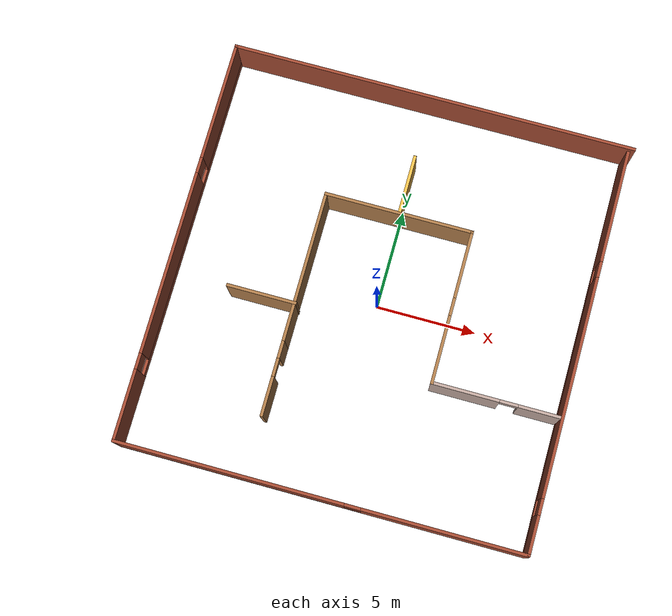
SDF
<?xml version='1.0'?>
<sdf version='1.6'>
  <model name='Untitled'>
    <pose frame=''>0.046419 0.290681 0 0 -0 0</pose>
    <link name='Wall_10'>
      <pose frame=''>-0.124999 -10.175 0 0 -0 3.14159</pose>
      <visual name='Wall_10_Visual_0'>
        <pose frame=''>-6.06099 0 1.25 0 -0 0</pose>
        <geometry>
          <box>
            <size>8.12801 0.15 2.5</size>
          </box>
        </geometry>
        <material>
          <script>
            <uri>file://media/materials/scripts/gazebo.material</uri>
            <name>Gazebo/Bricks</name>
          </script>
          <ambient>1 1 1 1</ambient>
        </material>
        <meta>
          <layer>0</layer>
        </meta>
      </visual>
      <collision name='Wall_10_Collision_0'>
        <geometry>
          <box>
            <size>8.12801 0.15 2.5</size>
          </box>
        </geometry>
        <pose frame=''>-6.06099 0 1.25 0 -0 0</pose>
      </collision>
      <visual name='Wall_10_Visual_1'>
        <pose frame=''>4.06401 0 0.25 0 -0 0</pose>
        <geometry>
          <box>
            <size>12.122 0.15 0.5</size>
          </box>
        </geometry>
        <material>
          <script>
            <uri>file://media/materials/scripts/gazebo.material</uri>
            <name>Gazebo/Bricks</name>
          </script>
          <ambient>1 1 1 1</ambient>
        </material>
        <meta>
          <layer>0</layer>
        </meta>
      </visual>
      <collision name='Wall_10_Collision_1'>
        <geometry>
          <box>
            <size>12.122 0.15 0.5</size>
          </box>
        </geometry>
        <pose frame=''>4.06401 0 0.25 0 -0 0</pose>
      </collision>
      <visual name='Wall_10_Visual_2'>
        <pose frame=''>4.46401 0 1.5 0 -0 0</pose>
        <geometry>
          <box>
            <size>11.322 0.15 2</size>
          </box>
        </geometry>
        <material>
          <script>
            <uri>file://media/materials/scripts/gazebo.material</uri>
            <name>Gazebo/Bricks</name>
          </script>
          <ambient>1 1 1 1</ambient>
        </material>
        <meta>
          <layer>0</layer>
        </meta>
      </visual>
      <collision name='Wall_10_Collision_2'>
        <geometry>
          <box>
            <size>11.322 0.15 2</size>
          </box>
        </geometry>
        <pose frame=''>4.46401 0 1.5 0 -0 0</pose>
      </collision>
      <visual name='Wall_10_Visual_3'>
        <pose frame=''>-1.59699 0 1.9 0 -0 0</pose>
        <geometry>
          <box>
            <size>0.8 0.15 1.2</size>
          </box>
        </geometry>
        <material>
          <script>
            <uri>file://media/materials/scripts/gazebo.material</uri>
            <name>Gazebo/Bricks</name>
          </script>
          <ambient>1 1 1 1</ambient>
        </material>
        <meta>
          <layer>0</layer>
        </meta>
      </visual>
      <collision name='Wall_10_Collision_3'>
        <geometry>
          <box>
            <size>0.8 0.15 1.2</size>
          </box>
        </geometry>
        <pose frame=''>-1.59699 0 1.9 0 -0 0</pose>
      </collision>
    </link>
    <link name='Wall_11'>
      <pose frame=''>-10.175 0 0 0 -0 1.5708</pose>
      <visual name='Wall_11_Visual_0'>
        <pose frame=''>-8.45243 0 1.25 0 -0 0</pose>
        <geometry>
          <box>
            <size>3.59515 0.15 2.5</size>
          </box>
        </geometry>
        <material>
          <script>
            <uri>file://media/materials/scripts/gazebo.material</uri>
            <name>Gazebo/Bricks</name>
          </script>
          <ambient>1 1 1 1</ambient>
        </material>
        <meta>
          <layer>0</layer>
        </meta>
      </visual>
      <collision name='Wall_11_Collision_0'>
        <geometry>
          <box>
            <size>3.59515 0.15 2.5</size>
          </box>
        </geometry>
        <pose frame=''>-8.45243 0 1.25 0 -0 0</pose>
      </collision>
      <visual name='Wall_11_Visual_1'>
        <pose frame=''>1.79757 0 0.25 0 -0 0</pose>
        <geometry>
          <box>
            <size>16.9049 0.15 0.5</size>
          </box>
        </geometry>
        <material>
          <script>
            <uri>file://media/materials/scripts/gazebo.material</uri>
            <name>Gazebo/Bricks</name>
          </script>
          <ambient>1 1 1 1</ambient>
        </material>
        <meta>
          <layer>0</layer>
        </meta>
      </visual>
      <collision name='Wall_11_Collision_1'>
        <geometry>
          <box>
            <size>16.9049 0.15 0.5</size>
          </box>
        </geometry>
        <pose frame=''>1.79757 0 0.25 0 -0 0</pose>
      </collision>
      <visual name='Wall_11_Visual_2'>
        <pose frame=''>-1.23521 0 1.5 0 -0 0</pose>
        <geometry>
          <box>
            <size>9.2393 0.15 2</size>
          </box>
        </geometry>
        <material>
          <script>
            <uri>file://media/materials/scripts/gazebo.material</uri>
            <name>Gazebo/Bricks</name>
          </script>
          <ambient>1 1 1 1</ambient>
        </material>
        <meta>
          <layer>0</layer>
        </meta>
      </visual>
      <collision name='Wall_11_Collision_2'>
        <geometry>
          <box>
            <size>9.2393 0.15 2</size>
          </box>
        </geometry>
        <pose frame=''>-1.23521 0 1.5 0 -0 0</pose>
      </collision>
      <visual name='Wall_11_Visual_3'>
        <pose frame=''>7.21722 0 1.5 0 -0 0</pose>
        <geometry>
          <box>
            <size>6.06556 0.15 2</size>
          </box>
        </geometry>
        <material>
          <script>
            <uri>file://media/materials/scripts/gazebo.material</uri>
            <name>Gazebo/Bricks</name>
          </script>
          <ambient>1 1 1 1</ambient>
        </material>
        <meta>
          <layer>0</layer>
        </meta>
      </visual>
      <collision name='Wall_11_Collision_3'>
        <geometry>
          <box>
            <size>6.06556 0.15 2</size>
          </box>
        </geometry>
        <pose frame=''>7.21722 0 1.5 0 -0 0</pose>
      </collision>
      <visual name='Wall_11_Visual_4'>
        <pose frame=''>-6.25485 0 1.9 0 -0 0</pose>
        <geometry>
          <box>
            <size>0.8 0.15 1.2</size>
          </box>
        </geometry>
        <material>
          <script>
            <uri>file://media/materials/scripts/gazebo.material</uri>
            <name>Gazebo/Bricks</name>
          </script>
          <ambient>1 1 1 1</ambient>
        </material>
        <meta>
          <layer>0</layer>
        </meta>
      </visual>
      <collision name='Wall_11_Collision_4'>
        <geometry>
          <box>
            <size>0.8 0.15 1.2</size>
          </box>
        </geometry>
        <pose frame=''>-6.25485 0 1.9 0 -0 0</pose>
      </collision>
      <visual name='Wall_11_Visual_5'>
        <pose frame=''>3.78444 0 1.9 0 -0 0</pose>
        <geometry>
          <box>
            <size>0.8 0.15 1.2</size>
          </box>
        </geometry>
        <material>
          <script>
            <uri>file://media/materials/scripts/gazebo.material</uri>
            <name>Gazebo/Bricks</name>
          </script>
          <ambient>1 1 1 1</ambient>
        </material>
        <meta>
          <layer>0</layer>
        </meta>
      </visual>
      <collision name='Wall_11_Collision_5'>
        <geometry>
          <box>
            <size>0.8 0.15 1.2</size>
          </box>
        </geometry>
        <pose frame=''>3.78444 0 1.9 0 -0 0</pose>
      </collision>
    </link>
    <link name='Wall_13'>
      <collision name='Wall_13_Collision'>
        <geometry>
          <box>
            <size>20.5 0.15 2.5</size>
          </box>
        </geometry>
        <pose frame=''>0 0 1.25 0 -0 0</pose>
      </collision>
      <visual name='Wall_13_Visual'>
        <pose frame=''>0 0 1.25 0 -0 0</pose>
        <geometry>
          <box>
            <size>20.5 0.15 2.5</size>
          </box>
        </geometry>
        <material>
          <script>
            <uri>file://media/materials/scripts/gazebo.material</uri>
            <name>Gazebo/Bricks</name>
          </script>
          <ambient>1 1 1 1</ambient>
        </material>
        <meta>
          <layer>0</layer>
        </meta>
      </visual>
      <pose frame=''>1e-06 10.175 0 0 -0 0</pose>
    </link>
    <link name='Wall_16'>
      <collision name='Wall_16_Collision'>
        <geometry>
          <box>
            <size>7.5 0.15 2.5</size>
          </box>
        </geometry>
        <pose frame=''>0 0 1.25 0 -0 0</pose>
      </collision>
      <visual name='Wall_16_Visual'>
        <pose frame=''>0 0 1.25 0 -0 0</pose>
        <geometry>
          <box>
            <size>7.5 0.15 2.5</size>
          </box>
        </geometry>
        <material>
          <script>
            <uri>file://media/materials/scripts/gazebo.material</uri>
            <name>Gazebo/Wood</name>
          </script>
          <ambient>1 1 1 1</ambient>
        </material>
        <meta>
          <layer>0</layer>
        </meta>
      </visual>
      <pose frame=''>-0.119947 4.02275 0 0 -0 0</pose>
    </link>
    <link name='Wall_17'>
      <pose frame=''>3.55505 0.222751 0 0 0 -1.5708</pose>
      <visual name='Wall_17_Visual_0'>
        <pose frame=''>-2.15936 0 1.25 0 -0 0</pose>
        <geometry>
          <box>
            <size>3.43128 0.15 2.5</size>
          </box>
        </geometry>
        <material>
          <script>
            <uri>file://media/materials/scripts/gazebo.material</uri>
            <name>Gazebo/Wood</name>
          </script>
          <ambient>1 1 1 1</ambient>
        </material>
        <meta>
          <layer>0</layer>
        </meta>
      </visual>
      <collision name='Wall_17_Collision_0'>
        <geometry>
          <box>
            <size>3.43128 0.15 2.5</size>
          </box>
        </geometry>
        <pose frame=''>-2.15936 0 1.25 0 -0 0</pose>
      </collision>
      <visual name='Wall_17_Visual_1'>
        <pose frame=''>2.16564 0 1.25 0 -0 0</pose>
        <geometry>
          <box>
            <size>3.41872 0.15 2.5</size>
          </box>
        </geometry>
        <material>
          <script>
            <uri>file://media/materials/scripts/gazebo.material</uri>
            <name>Gazebo/Wood</name>
          </script>
          <ambient>1 1 1 1</ambient>
        </material>
        <meta>
          <layer>0</layer>
        </meta>
      </visual>
      <collision name='Wall_17_Collision_1'>
        <geometry>
          <box>
            <size>3.41872 0.15 2.5</size>
          </box>
        </geometry>
        <pose frame=''>2.16564 0 1.25 0 -0 0</pose>
      </collision>
      <visual name='Wall_17_Visual_2'>
        <pose frame=''>0.006281 0 2.25 0 -0 0</pose>
        <geometry>
          <box>
            <size>0.9 0.15 0.5</size>
          </box>
        </geometry>
        <material>
          <script>
            <uri>file://media/materials/scripts/gazebo.material</uri>
            <name>Gazebo/Wood</name>
          </script>
          <ambient>1 1 1 1</ambient>
        </material>
        <meta>
          <layer>0</layer>
        </meta>
      </visual>
      <collision name='Wall_17_Collision_2'>
        <geometry>
          <box>
            <size>0.9 0.15 0.5</size>
          </box>
        </geometry>
        <pose frame=''>0.006281 0 2.25 0 -0 0</pose>
      </collision>
    </link>
    <link name='Wall_18'>
      <pose frame=''>6.73005 -3.57725 0 0 -0 0</pose>
      <visual name='Wall_18_Visual_0'>
        <pose frame=''>-1.55819 0 1.25 0 -0 0</pose>
        <geometry>
          <box>
            <size>3.38361 0.15 2.5</size>
          </box>
        </geometry>
        <material>
          <script>
            <uri>file://media/materials/scripts/gazebo.material</uri>
            <name>Gazebo/Grey</name>
          </script>
          <ambient>0.760784 0.662745 0.627451 1</ambient>
        </material>
        <meta>
          <layer>0</layer>
        </meta>
      </visual>
      <collision name='Wall_18_Collision_0'>
        <geometry>
          <box>
            <size>3.38361 0.15 2.5</size>
          </box>
        </geometry>
        <pose frame=''>-1.55819 0 1.25 0 -0 0</pose>
      </collision>
      <visual name='Wall_18_Visual_1'>
        <pose frame=''>2.14181 0 1.25 0 -0 0</pose>
        <geometry>
          <box>
            <size>2.21638 0.15 2.5</size>
          </box>
        </geometry>
        <material>
          <script>
            <uri>file://media/materials/scripts/gazebo.material</uri>
            <name>Gazebo/Grey</name>
          </script>
          <ambient>0.760784 0.662745 0.627451 1</ambient>
        </material>
        <meta>
          <layer>0</layer>
        </meta>
      </visual>
      <collision name='Wall_18_Collision_1'>
        <geometry>
          <box>
            <size>2.21638 0.15 2.5</size>
          </box>
        </geometry>
        <pose frame=''>2.14181 0 1.25 0 -0 0</pose>
      </collision>
      <visual name='Wall_18_Visual_2'>
        <pose frame=''>0.583615 0 2.25 0 -0 0</pose>
        <geometry>
          <box>
            <size>0.9 0.15 0.5</size>
          </box>
        </geometry>
        <material>
          <script>
            <uri>file://media/materials/scripts/gazebo.material</uri>
            <name>Gazebo/Grey</name>
          </script>
          <ambient>0.760784 0.662745 0.627451 1</ambient>
        </material>
        <meta>
          <layer>0</layer>
        </meta>
      </visual>
      <collision name='Wall_18_Collision_2'>
        <geometry>
          <box>
            <size>0.9 0.15 0.5</size>
          </box>
        </geometry>
        <pose frame=''>0.583615 0 2.25 0 -0 0</pose>
      </collision>
    </link>
    <link name='Wall_20'>
      <collision name='Wall_20_Collision'>
        <geometry>
          <box>
            <size>7.75 0.15 2.5</size>
          </box>
        </geometry>
        <pose frame=''>0 0 1.25 0 -0 0</pose>
      </collision>
      <visual name='Wall_20_Visual'>
        <pose frame=''>0 0 1.25 0 -0 0</pose>
        <geometry>
          <box>
            <size>7.75 0.15 2.5</size>
          </box>
        </geometry>
        <material>
          <script>
            <uri>file://media/materials/scripts/gazebo.material</uri>
            <name>Gazebo/Wood</name>
          </script>
          <ambient>1 1 1 1</ambient>
        </material>
        <meta>
          <layer>0</layer>
        </meta>
      </visual>
      <pose frame=''>-3.79495 0.222751 0 0 0 -1.5708</pose>
    </link>
    <link name='Wall_24'>
      <pose frame=''>-3.79495 -5.37725 0 0 0 -1.5708</pose>
      <visual name='Wall_24_Visual_0'>
        <pose frame=''>-1.44079 0 1.25 0 -0 0</pose>
        <geometry>
          <box>
            <size>0.868419 0.15 2.5</size>
          </box>
        </geometry>
        <material>
          <script>
            <uri>file://media/materials/scripts/gazebo.material</uri>
            <name>Gazebo/Wood</name>
          </script>
          <ambient>1 1 1 1</ambient>
        </material>
        <meta>
          <layer>0</layer>
        </meta>
      </visual>
      <collision name='Wall_24_Collision_0'>
        <geometry>
          <box>
            <size>0.868419 0.15 2.5</size>
          </box>
        </geometry>
        <pose frame=''>-1.44079 0 1.25 0 -0 0</pose>
      </collision>
      <visual name='Wall_24_Visual_1'>
        <pose frame=''>0.884209 0 1.25 0 -0 0</pose>
        <geometry>
          <box>
            <size>1.98158 0.15 2.5</size>
          </box>
        </geometry>
        <material>
          <script>
            <uri>file://media/materials/scripts/gazebo.material</uri>
            <name>Gazebo/Wood</name>
          </script>
          <ambient>1 1 1 1</ambient>
        </material>
        <meta>
          <layer>0</layer>
        </meta>
      </visual>
      <collision name='Wall_24_Collision_1'>
        <geometry>
          <box>
            <size>1.98158 0.15 2.5</size>
          </box>
        </geometry>
        <pose frame=''>0.884209 0 1.25 0 -0 0</pose>
      </collision>
      <visual name='Wall_24_Visual_2'>
        <pose frame=''>-0.556581 0 2.25 0 -0 0</pose>
        <geometry>
          <box>
            <size>0.9 0.15 0.5</size>
          </box>
        </geometry>
        <material>
          <script>
            <uri>file://media/materials/scripts/gazebo.material</uri>
            <name>Gazebo/Wood</name>
          </script>
          <ambient>1 1 1 1</ambient>
        </material>
        <meta>
          <layer>0</layer>
        </meta>
      </visual>
      <collision name='Wall_24_Collision_2'>
        <geometry>
          <box>
            <size>0.9 0.15 0.5</size>
          </box>
        </geometry>
        <pose frame=''>-0.556581 0 2.25 0 -0 0</pose>
      </collision>
    </link>
    <link name='Wall_26'>
      <collision name='Wall_26_Collision'>
        <geometry>
          <box>
            <size>3.5 0.15 2.5</size>
          </box>
        </geometry>
        <pose frame=''>0 0 1.25 0 -0 0</pose>
      </collision>
      <visual name='Wall_26_Visual'>
        <pose frame=''>0 0 1.25 0 -0 0</pose>
        <geometry>
          <box>
            <size>3.5 0.15 2.5</size>
          </box>
        </geometry>
        <material>
          <script>
            <uri>file://media/materials/scripts/gazebo.material</uri>
            <name>Gazebo/Wood</name>
          </script>
          <ambient>1 1 1 1</ambient>
        </material>
        <meta>
          <layer>0</layer>
        </meta>
      </visual>
      <pose frame=''>-5.4337 -1.59408 0 0 -0 3.14159</pose>
    </link>
    <link name='Wall_28'>
      <collision name='Wall_28_Collision'>
        <geometry>
          <box>
            <size>3 0.15 2.5</size>
          </box>
        </geometry>
        <pose frame=''>0 0 1.25 0 -0 0</pose>
      </collision>
      <visual name='Wall_28_Visual'>
        <pose frame=''>0 0 1.25 0 -0 0</pose>
        <geometry>
          <box>
            <size>3 0.15 2.5</size>
          </box>
        </geometry>
        <material>
          <script>
            <uri>file://media/materials/scripts/gazebo.material</uri>
            <name>Gazebo/Grey</name>
          </script>
          <ambient>1 0.764706 0.305882 1</ambient>
        </material>
        <meta>
          <layer>0</layer>
        </meta>
      </visual>
      <pose frame=''>-0.104065 5.52105 0 0 -0 1.5708</pose>
    </link>
    <link name='Wall_9'>
      <pose frame=''>9.925 -0.125 0 0 0 -1.5708</pose>
      <visual name='Wall_9_Visual_0'>
        <pose frame=''>-7.2522 0 1.25 0 -0 0</pose>
        <geometry>
          <box>
            <size>5.7456 0.15 2.5</size>
          </box>
        </geometry>
        <material>
          <script>
            <uri>file://media/materials/scripts/gazebo.material</uri>
            <name>Gazebo/Bricks</name>
          </script>
          <ambient>1 1 1 1</ambient>
        </material>
        <meta>
          <layer>0</layer>
        </meta>
      </visual>
      <collision name='Wall_9_Collision_0'>
        <geometry>
          <box>
            <size>5.7456 0.15 2.5</size>
          </box>
        </geometry>
        <pose frame=''>-7.2522 0 1.25 0 -0 0</pose>
      </collision>
      <visual name='Wall_9_Visual_1'>
        <pose frame=''>2.8728 0 0.25 0 -0 0</pose>
        <geometry>
          <box>
            <size>14.5044 0.15 0.5</size>
          </box>
        </geometry>
        <material>
          <script>
            <uri>file://media/materials/scripts/gazebo.material</uri>
            <name>Gazebo/Bricks</name>
          </script>
          <ambient>1 1 1 1</ambient>
        </material>
        <meta>
          <layer>0</layer>
        </meta>
      </visual>
      <collision name='Wall_9_Collision_1'>
        <geometry>
          <box>
            <size>14.5044 0.15 0.5</size>
          </box>
        </geometry>
        <pose frame=''>2.8728 0 0.25 0 -0 0</pose>
      </collision>
      <visual name='Wall_9_Visual_2'>
        <pose frame=''>1.87977 0 1.5 0 -0 0</pose>
        <geometry>
          <box>
            <size>10.9183 0.15 2</size>
          </box>
        </geometry>
        <material>
          <script>
            <uri>file://media/materials/scripts/gazebo.material</uri>
            <name>Gazebo/Bricks</name>
          </script>
          <ambient>1 1 1 1</ambient>
        </material>
        <meta>
          <layer>0</layer>
        </meta>
      </visual>
      <collision name='Wall_9_Collision_2'>
        <geometry>
          <box>
            <size>10.9183 0.15 2</size>
          </box>
        </geometry>
        <pose frame=''>1.87977 0 1.5 0 -0 0</pose>
      </collision>
      <visual name='Wall_9_Visual_3'>
        <pose frame=''>9.13197 0 1.5 0 -0 0</pose>
        <geometry>
          <box>
            <size>1.98606 0.15 2</size>
          </box>
        </geometry>
        <material>
          <script>
            <uri>file://media/materials/scripts/gazebo.material</uri>
            <name>Gazebo/Bricks</name>
          </script>
          <ambient>1 1 1 1</ambient>
        </material>
        <meta>
          <layer>0</layer>
        </meta>
      </visual>
      <collision name='Wall_9_Collision_3'>
        <geometry>
          <box>
            <size>1.98606 0.15 2</size>
          </box>
        </geometry>
        <pose frame=''>9.13197 0 1.5 0 -0 0</pose>
      </collision>
      <visual name='Wall_9_Visual_4'>
        <pose frame=''>-3.9794 0 1.9 0 -0 0</pose>
        <geometry>
          <box>
            <size>0.8 0.15 1.2</size>
          </box>
        </geometry>
        <material>
          <script>
            <uri>file://media/materials/scripts/gazebo.material</uri>
            <name>Gazebo/Bricks</name>
          </script>
          <ambient>1 1 1 1</ambient>
        </material>
        <meta>
          <layer>0</layer>
        </meta>
      </visual>
      <collision name='Wall_9_Collision_4'>
        <geometry>
          <box>
            <size>0.8 0.15 1.2</size>
          </box>
        </geometry>
        <pose frame=''>-3.9794 0 1.9 0 -0 0</pose>
      </collision>
      <visual name='Wall_9_Visual_5'>
        <pose frame=''>7.73894 0 1.9 0 -0 0</pose>
        <geometry>
          <box>
            <size>0.8 0.15 1.2</size>
          </box>
        </geometry>
        <material>
          <script>
            <uri>file://media/materials/scripts/gazebo.material</uri>
            <name>Gazebo/Bricks</name>
          </script>
          <ambient>1 1 1 1</ambient>
        </material>
        <meta>
          <layer>0</layer>
        </meta>
      </visual>
      <collision name='Wall_9_Collision_5'>
        <geometry>
          <box>
            <size>0.8 0.15 1.2</size>
          </box>
        </geometry>
        <pose frame=''>7.73894 0 1.9 0 -0 0</pose>
      </collision>
    </link>
    <static>1</static>
  </model>
</sdf>
